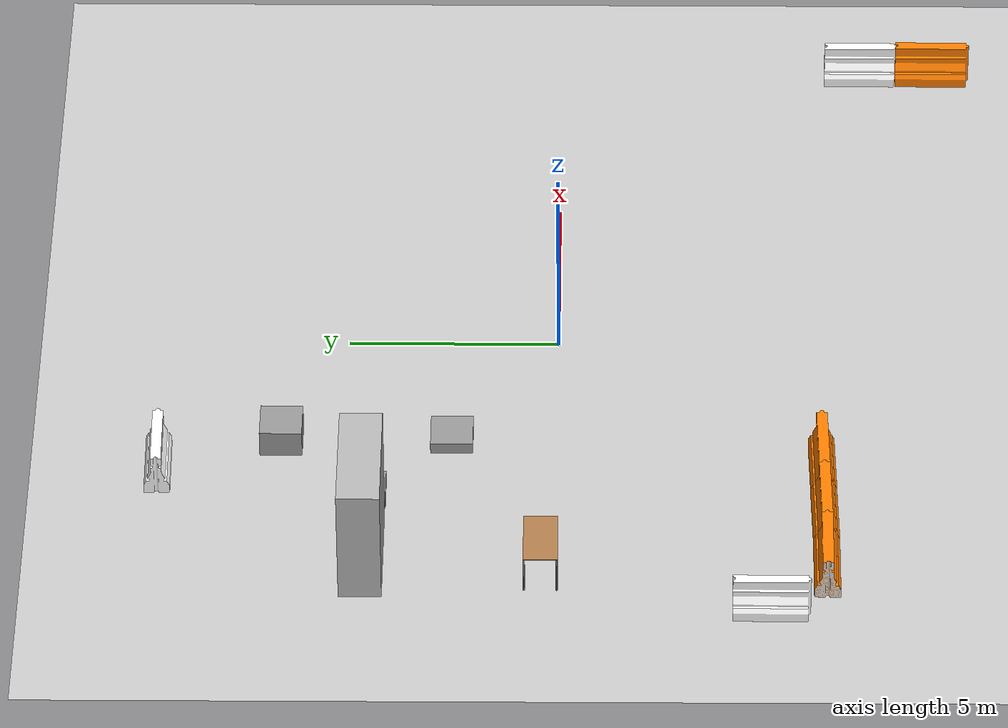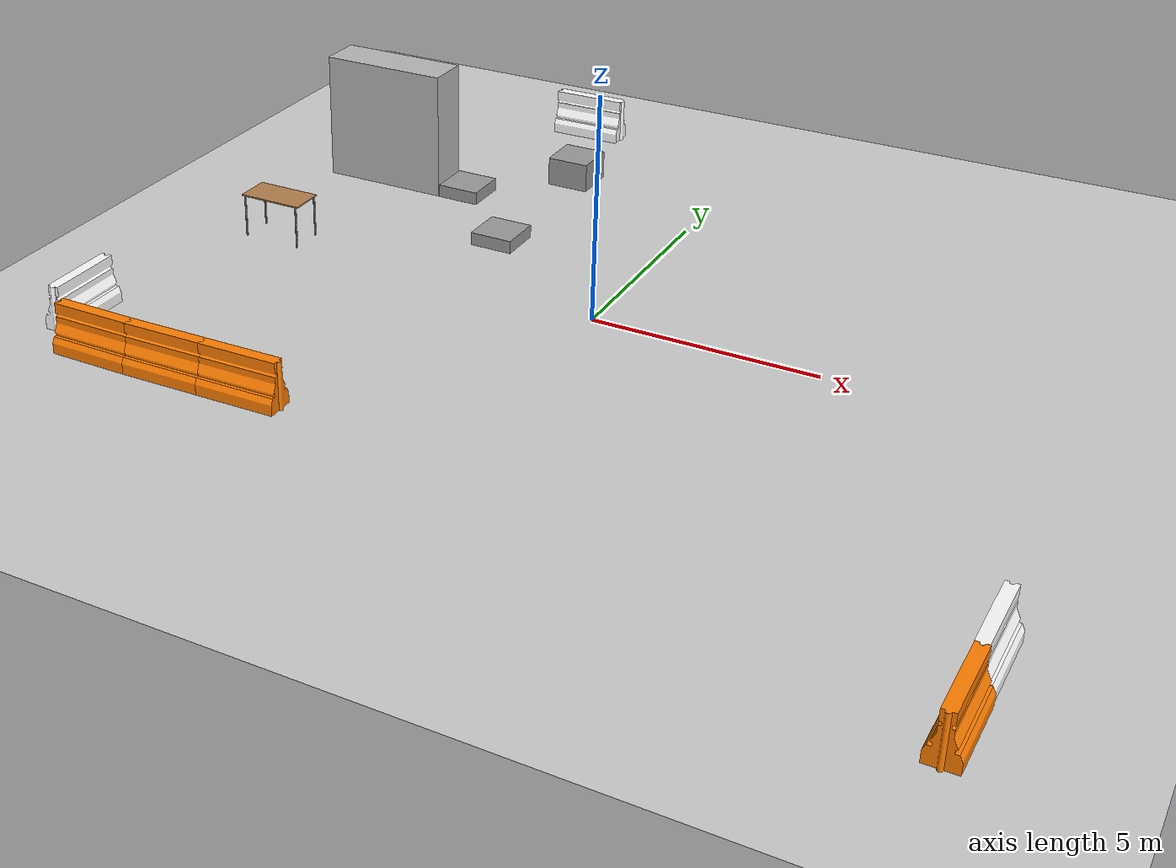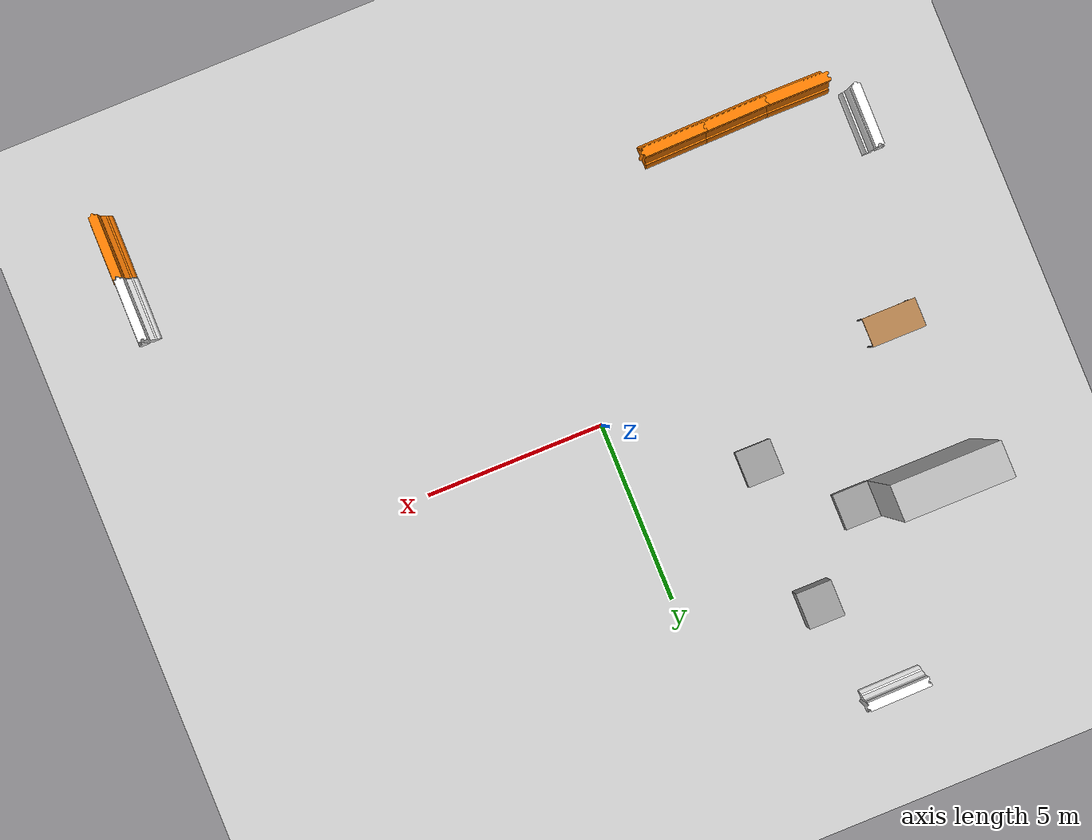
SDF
<sdf version="1.7">
 <world name="default">
  <light name="sun" type="directional">
   <pose>0 0 10 0 -0 0</pose>
   <diffuse>0.8 0.8 0.8 1</diffuse>
   <specular>0.2 0.2 0.2 1</specular>
   <attenuation>
    <range>1000</range>
    <constant>0.9</constant>
    <linear>0.01</linear>
    <quadratic>0.001</quadratic>
   </attenuation>
   <direction>-0.5 0.1 -0.9</direction>
   <spot><inner_angle>0</inner_angle><outer_angle>0</outer_angle><falloff>0</falloff></spot>
  </light>
  <model name="ground_plane">
   <static>1</static>
   <link name="link">
    <collision name="collision">
     <geometry><plane><normal>0 0 1</normal><size>100 100</size></plane></geometry>
     <surface><friction><ode><mu>100</mu><mu2>50</mu2></ode></friction></surface>
    </collision>
    <visual name="visual">
     <cast_shadows>0</cast_shadows>
     <geometry><plane><normal>0 0 1</normal><size>100 100</size></plane></geometry>
     <material>
      <script><uri>file://media/materials/scripts/gazebo.material</uri><name>Gazebo/Grey</name></script>
     </material>
    </visual>
    <velocity_decay><linear>0</linear><angular>0</angular></velocity_decay>
   </link>
  </model>
  <physics type="ode">
   <max_step_size>0.001</max_step_size>
   <real_time_factor>1</real_time_factor>
   <real_time_update_rate>1000</real_time_update_rate>
  </physics>
  <scene><ambient>0.4 0.4 0.4 1</ambient><background>0.7 0.7 0.7 1</background><shadows>1</shadows></scene>
  <spherical_coordinates>
   <surface_model>EARTH_WGS84</surface_model>
   <latitude_deg>0</latitude_deg>
   <longitude_deg>0</longitude_deg>
   <elevation>0</elevation>
   <heading_deg>0</heading_deg>
  </spherical_coordinates>
  <model name="drc_practice_organge_jersey_barrier">
   <static>1</static>
   <link name="link">
    <visual name="visual">
     <geometry>
      <mesh><uri>model://drc_practice_orange_jersey_barrier/meshes/jersey_barrier.dae</uri></mesh>
     </geometry>
    </visual>
    <collision name="collision">
     <geometry>
      <mesh><uri>model://drc_practice_orange_jersey_barrier/meshes/jersey_barrier.dae</uri></mesh>
     </geometry>
    </collision>
    <velocity_decay><linear>0</linear><angular>0</angular></velocity_decay>
   </link>
   <pose>-4.54889 -6.23392 0 0 -0 1.59364</pose>
  </model>
  <model name="drc_practice_white_jersey_barrier">
   <static>1</static>
   <link name="link">
    <visual name="visual">
     <geometry>
      <mesh><uri>model://drc_practice_white_jersey_barrier/meshes/jersey_barrier.dae</uri></mesh>
     </geometry>
    </visual>
    <collision name="collision">
     <geometry>
      <mesh><uri>model://drc_practice_white_jersey_barrier/meshes/jersey_barrier.dae</uri></mesh>
     </geometry>
    </collision>
    <velocity_decay><linear>0</linear><angular>0</angular></velocity_decay>
   </link>
   <pose>-9.48699 -4.9367 0 0 -0 0</pose>
  </model>
  <model name="drc_practice_organge_jersey_barrier_0">
   <static>1</static>
   <link name="link">
    <visual name="visual">
     <geometry>
      <mesh><uri>model://drc_practice_orange_jersey_barrier/meshes/jersey_barrier.dae</uri></mesh>
     </geometry>
    </visual>
    <collision name="collision">
     <geometry>
      <mesh><uri>model://drc_practice_orange_jersey_barrier/meshes/jersey_barrier.dae</uri></mesh>
     </geometry>
    </collision>
    <velocity_decay><linear>0</linear><angular>0</angular></velocity_decay>
   </link>
   <pose>-6.30934 -6.26351 0 0 -0 1.59467</pose>
  </model>
  <model name="drc_practice_organge_jersey_barrier_1">
   <static>1</static>
   <link name="link">
    <visual name="visual">
     <geometry>
      <mesh><uri>model://drc_practice_orange_jersey_barrier/meshes/jersey_barrier.dae</uri></mesh>
     </geometry>
    </visual>
    <collision name="collision">
     <geometry>
      <mesh><uri>model://drc_practice_orange_jersey_barrier/meshes/jersey_barrier.dae</uri></mesh>
     </geometry>
    </collision>
    <velocity_decay><linear>0</linear><angular>0</angular></velocity_decay>
   </link>
   <pose>-8.06556 -6.2736 0 0 -0 1.57109</pose>
  </model>
  <model name="drc_practice_white_jersey_barrier_0">
   <static>1</static>
   <link name="link">
    <visual name="visual">
     <geometry>
      <mesh><uri>model://drc_practice_white_jersey_barrier/meshes/jersey_barrier.dae</uri></mesh>
     </geometry>
    </visual>
    <collision name="collision">
     <geometry>
      <mesh><uri>model://drc_practice_white_jersey_barrier/meshes/jersey_barrier.dae</uri></mesh>
     </geometry>
    </collision>
    <velocity_decay><linear>0</linear><angular>0</angular></velocity_decay>
   </link>
   <pose>10.3176 -7.4365 0 0 -0 0</pose>
  </model>
  <model name="drc_practice_white_jersey_barrier_1">
   <static>1</static>
   <link name="link">
    <visual name="visual">
     <geometry>
      <mesh><uri>model://drc_practice_white_jersey_barrier/meshes/jersey_barrier.dae</uri></mesh>
     </geometry>
    </visual>
    <collision name="collision">
     <geometry>
      <mesh><uri>model://drc_practice_white_jersey_barrier/meshes/jersey_barrier.dae</uri></mesh>
     </geometry>
    </collision>
    <velocity_decay><linear>0</linear><angular>0</angular></velocity_decay>
   </link>
   <pose>-4.54271 9.38577 0 0 -0 1.59123</pose>
  </model>
  <model name="drc_practice_organge_jersey_barrier_2">
   <static>1</static>
   <link name="link">
    <visual name="visual">
     <geometry>
      <mesh><uri>model://drc_practice_orange_jersey_barrier/meshes/jersey_barrier.dae</uri></mesh>
     </geometry>
    </visual>
    <collision name="collision">
     <geometry>
      <mesh><uri>model://drc_practice_orange_jersey_barrier/meshes/jersey_barrier.dae</uri></mesh>
     </geometry>
    </collision>
    <velocity_decay><linear>0</linear><angular>0</angular></velocity_decay>
   </link>
   <pose>10.3218 -9.21435 0 0 -0 0</pose>
  </model>
  <gravity>0 0 -9.8</gravity>
  <magnetic_field>6e-06 2.3e-05 -4.2e-05</magnetic_field>
  <atmosphere type="adiabatic"/>
  <model name="table">
   <static>1</static>
   <link name="link">
    <collision name="surface">
     <pose>0 0 1 0 -0 0</pose>
     <geometry><box><size>1.5 0.8 0.03</size></box></geometry>
     <surface><friction><ode><mu>0.6</mu><mu2>0.6</mu2></ode></friction></surface>
    </collision>
    <visual name="visual1">
     <pose>0 0 1 0 -0 0</pose>
     <geometry><box><size>1.5 0.8 0.03</size></box></geometry>
     <material>
      <script><uri>file://media/materials/scripts/gazebo.material</uri><name>Gazebo/Wood</name></script>
     </material>
    </visual>
    <collision name="front_left_leg">
     <pose>0.68 0.38 0.5 0 -0 0</pose>
     <geometry><cylinder><radius>0.02</radius><length>1</length></cylinder></geometry>
    </collision>
    <visual name="front_left_leg">
     <pose>0.68 0.38 0.5 0 -0 0</pose>
     <geometry><cylinder><radius>0.02</radius><length>1</length></cylinder></geometry>
     <material>
      <script><uri>file://media/materials/scripts/gazebo.material</uri><name>Gazebo/Grey</name></script>
     </material>
    </visual>
    <collision name="front_right_leg">
     <pose>0.68 -0.38 0.5 0 -0 0</pose>
     <geometry><cylinder><radius>0.02</radius><length>1</length></cylinder></geometry>
    </collision>
    <visual name="front_right_leg">
     <pose>0.68 -0.38 0.5 0 -0 0</pose>
     <geometry><cylinder><radius>0.02</radius><length>1</length></cylinder></geometry>
     <material>
      <script><uri>file://media/materials/scripts/gazebo.material</uri><name>Gazebo/Grey</name></script>
     </material>
    </visual>
    <collision name="back_right_leg">
     <pose>-0.68 -0.38 0.5 0 -0 0</pose>
     <geometry><cylinder><radius>0.02</radius><length>1</length></cylinder></geometry>
    </collision>
    <visual name="back_right_leg">
     <pose>-0.68 -0.38 0.5 0 -0 0</pose>
     <geometry><cylinder><radius>0.02</radius><length>1</length></cylinder></geometry>
     <material>
      <script><uri>file://media/materials/scripts/gazebo.material</uri><name>Gazebo/Grey</name></script>
     </material>
    </visual>
    <collision name="back_left_leg">
     <pose>-0.68 0.38 0.5 0 -0 0</pose>
     <geometry><cylinder><radius>0.02</radius><length>1</length></cylinder></geometry>
    </collision>
    <visual name="back_left_leg">
     <pose>-0.68 0.38 0.5 0 -0 0</pose>
     <geometry><cylinder><radius>0.02</radius><length>1</length></cylinder></geometry>
     <material>
      <script><uri>file://media/materials/scripts/gazebo.material</uri><name>Gazebo/Grey</name></script>
     </material>
    </visual>
   </link>
   <pose>-8.07138 0.356142 0 0 -0 0</pose>
  </model>
  <model name="brick_box_3x1x3">
   <static>1</static>
   <link name="chassis">
    <pose>0 0 1.5 0 -0 0</pose>
    <collision name="collision"><geometry><box><size>3 1 3</size></box></geometry></collision>
    <visual name="visual">
     <geometry><mesh><uri>model://brick_box_3x1x3/meshes/simple_box.dae</uri><scale>3 1 3</scale></mesh></geometry>
     <material>
      <script>
       <uri>model://brick_box_3x1x3/materials/scripts</uri>
       <uri>model://brick_box_3x1x3/materials/textures</uri>
       <name>BrickBox/Diffuse</name>
      </script>
     </material>
    </visual>
   </link>
   <pose>-7.50356 4.51935 0 0 -0 0</pose>
  </model>
  <model name="unit_box_0">
   <pose>-3.54184 6.514 0.154097 0 -1e-05 -0.000952</pose>
   <link name="link">
    <inertial>
     <mass>1</mass>
     <inertia>
      <ixx>0.166667</ixx>
      <ixy>0</ixy>
      <ixz>0</ixz>
      <iyy>0.166667</iyy>
      <iyz>0</iyz>
      <izz>0.166667</izz>
     </inertia>
    </inertial>
    <collision name="collision"><geometry><box><size>1 1 0.999999</size></box></geometry></collision>
    <visual name="visual">
     <geometry><box><size>1 1 0.999999</size></box></geometry>
     <material>
      <script><name>Gazebo/Grey</name><uri>file://media/materials/scripts/gazebo.material</uri></script>
     </material>
    </visual>
   </link>
  </model>
  <model name="unit_box_0_clone">
   <pose>-3.49319 2.49195 0.165995 0 -1e-05 -0.000952</pose>
   <link name="link">
    <inertial>
     <mass>1</mass>
     <inertia>
      <ixx>0.166667</ixx>
      <ixy>0</ixy>
      <ixz>0</ixz>
      <iyy>0.166667</iyy>
      <iyz>0</iyz>
      <izz>0.166667</izz>
     </inertia>
    </inertial>
    <collision name="collision"><geometry><box><size>1 1 0.300333</size></box></geometry></collision>
    <visual name="visual">
     <geometry><box><size>1 1 0.300333</size></box></geometry>
     <material>
      <script><name>Gazebo/Grey</name><uri>file://media/materials/scripts/gazebo.material</uri></script>
     </material>
    </visual>
   </link>
  </model>
  <model name="unit_box_0_clone_0">
   <pose>-5.46685 4.50559 0.153744 0 -1e-05 -0.000952</pose>
   <link name="link">
    <inertial>
     <mass>1</mass>
     <inertia>
      <ixx>0.166667</ixx>
      <ixy>0</ixy>
      <ixz>0</ixz>
      <iyy>0.166667</iyy>
      <iyz>0</iyz>
      <izz>0.166667</izz>
     </inertia>
    </inertial>
    <collision name="collision"><geometry><box><size>1 1 0.300333</size></box></geometry></collision>
    <visual name="visual">
     <geometry><box><size>1 1 0.300333</size></box></geometry>
     <material>
      <script><name>Gazebo/Grey</name><uri>file://media/materials/scripts/gazebo.material</uri></script>
     </material>
    </visual>
   </link>
  </model>
 </world>
</sdf>
